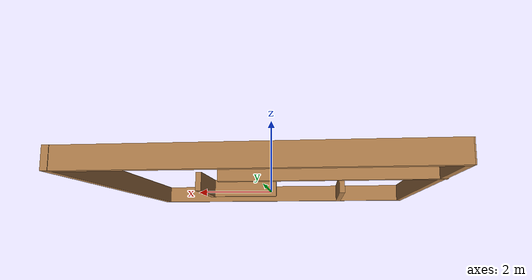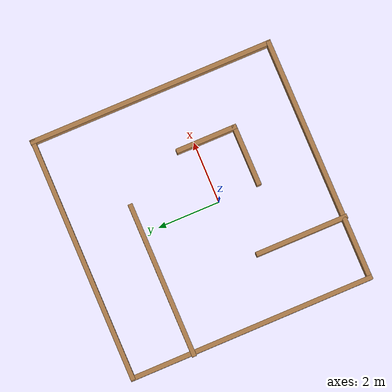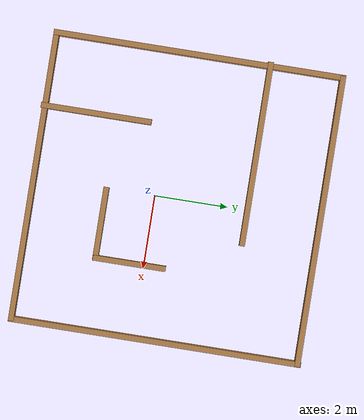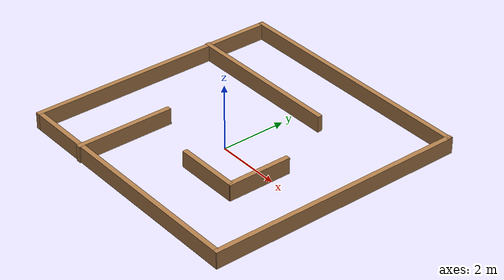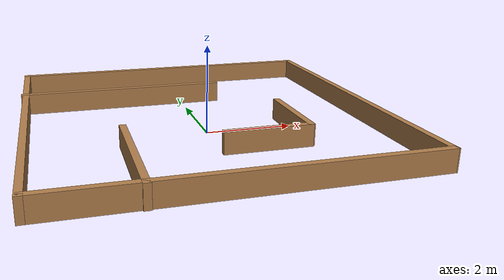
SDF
<?xml version='1.0'?>
<sdf version='1.6'>
  <model name='project_large'>
    <link name='Wall_0'>
      <pose frame=''>-0.019445 4.53087 0 0 -0 0</pose>
      <self_collide>0</self_collide>
      <enable_wind>0</enable_wind>
      <kinematic>0</kinematic>
      <inertial>
        <inertia>
          <ixx>0</ixx>
          <ixy>0</ixy>
          <ixz>0</ixz>
          <iyy>0</iyy>
          <iyz>0</iyz>
          <izz>0</izz>
        </inertia>
        <mass>0</mass>
        <pose frame=''>0 0 0 0 -0 0</pose>
      </inertial>
      <visual name='Wall_0_Visual'>
        <pose frame=''>0 0 0.25 0 -0 0</pose>
        <geometry>
          <box>
            <size>7.95463 0.15 0.5</size>
          </box>
        </geometry>
        <material>
          <script>
            <uri>file://media/materials/scripts/gazebo.material</uri>
            <name>Gazebo/Wood</name>
          </script>
          <ambient>1 1 1 1</ambient>
        </material>
        <transparency>0</transparency>
        <cast_shadows>1</cast_shadows>
      </visual>
      <collision name='Wall_0_Collision'>
        <laser_retro>0</laser_retro>
        <max_contacts>10</max_contacts>
        <pose frame=''>0 0 0.25 0 -0 0</pose>
        <geometry>
          <box>
            <size>7.95463 0.15 0.5</size>
          </box>
        </geometry>
        <surface>
          <friction>
            <ode>
              <mu>1</mu>
              <mu2>1</mu2>
              <fdir1>0 0 0</fdir1>
              <slip1>0</slip1>
              <slip2>0</slip2>
            </ode>
            <torsional>
              <coefficient>1</coefficient>
              <patch_radius>0</patch_radius>
              <surface_radius>0</surface_radius>
              <use_patch_radius>1</use_patch_radius>
              <ode>
                <slip>0</slip>
              </ode>
            </torsional>
          </friction>
          <bounce>
            <restitution_coefficient>0</restitution_coefficient>
            <threshold>1e+06</threshold>
          </bounce>
          <contact>
            <collide_without_contact>0</collide_without_contact>
            <collide_without_contact_bitmask>1</collide_without_contact_bitmask>
            <collide_bitmask>1</collide_bitmask>
            <ode>
              <soft_cfm>0</soft_cfm>
              <soft_erp>0.2</soft_erp>
              <kp>1e+13</kp>
              <kd>1</kd>
              <max_vel>0.01</max_vel>
              <min_depth>0</min_depth>
            </ode>
            <bullet>
              <split_impulse>1</split_impulse>
              <split_impulse_penetration_threshold>-0.01</split_impulse_penetration_threshold>
              <soft_cfm>0</soft_cfm>
              <soft_erp>0.2</soft_erp>
              <kp>1e+13</kp>
              <kd>1</kd>
            </bullet>
          </contact>
        </surface>
      </collision>
    </link>
    <link name='Wall_0_clone'>
      <pose frame=''>-1.54338 2.54434 0 0 -0 0</pose>
      <self_collide>0</self_collide>
      <enable_wind>0</enable_wind>
      <kinematic>0</kinematic>
      <inertial>
        <inertia>
          <ixx>0</ixx>
          <ixy>0</ixy>
          <ixz>0</ixz>
          <iyy>0</iyy>
          <iyz>0</iyz>
          <izz>0</izz>
        </inertia>
        <mass>0</mass>
        <pose frame=''>0 0 0 0 -0 0</pose>
      </inertial>
      <visual name='Wall_0_Visual'>
        <pose frame=''>0 0 0.25 0 -0 0</pose>
        <geometry>
          <box>
            <size>5.03427 0.15 0.5</size>
          </box>
        </geometry>
        <material>
          <script>
            <uri>file://media/materials/scripts/gazebo.material</uri>
            <name>Gazebo/Wood</name>
          </script>
          <ambient>1 1 1 1</ambient>
          <shader type='pixel'/>
        </material>
        <transparency>0</transparency>
        <cast_shadows>1</cast_shadows>
      </visual>
      <collision name='Wall_0_Collision'>
        <laser_retro>0</laser_retro>
        <max_contacts>10</max_contacts>
        <pose frame=''>0 0 0.25 0 -0 0</pose>
        <geometry>
          <box>
            <size>5.03427 0.15 0.5</size>
          </box>
        </geometry>
        <surface>
          <friction>
            <ode>
              <mu>1</mu>
              <mu2>1</mu2>
              <fdir1>0 0 0</fdir1>
              <slip1>0</slip1>
              <slip2>0</slip2>
            </ode>
            <torsional>
              <coefficient>1</coefficient>
              <patch_radius>0</patch_radius>
              <surface_radius>0</surface_radius>
              <use_patch_radius>1</use_patch_radius>
              <ode>
                <slip>0</slip>
              </ode>
            </torsional>
          </friction>
          <bounce>
            <restitution_coefficient>0</restitution_coefficient>
            <threshold>1e+06</threshold>
          </bounce>
          <contact>
            <collide_without_contact>0</collide_without_contact>
            <collide_without_contact_bitmask>1</collide_without_contact_bitmask>
            <collide_bitmask>1</collide_bitmask>
            <ode>
              <soft_cfm>0</soft_cfm>
              <soft_erp>0.2</soft_erp>
              <kp>1e+13</kp>
              <kd>1</kd>
              <max_vel>0.01</max_vel>
              <min_depth>0</min_depth>
            </ode>
            <bullet>
              <split_impulse>1</split_impulse>
              <split_impulse_penetration_threshold>-0.01</split_impulse_penetration_threshold>
              <soft_cfm>0</soft_cfm>
              <soft_erp>0.2</soft_erp>
              <kp>1e+13</kp>
              <kd>1</kd>
            </bullet>
          </contact>
        </surface>
      </collision>
    </link>
    <link name='Wall_2'>
      <pose frame=''>-3.94692 0.610965 0 0 0 -1.5708</pose>
      <self_collide>0</self_collide>
      <enable_wind>0</enable_wind>
      <kinematic>0</kinematic>
      <inertial>
        <inertia>
          <ixx>0</ixx>
          <ixy>0</ixy>
          <ixz>0</ixz>
          <iyy>0</iyy>
          <iyz>0</iyz>
          <izz>0</izz>
        </inertia>
        <mass>0</mass>
        <pose frame=''>0 0 0 0 -0 0</pose>
      </inertial>
      <visual name='Wall_2_Visual'>
        <pose frame=''>0 0 0.25 0 -0 0</pose>
        <geometry>
          <box>
            <size>7.98826 0.15 0.5</size>
          </box>
        </geometry>
        <material>
          <script>
            <uri>file://media/materials/scripts/gazebo.material</uri>
            <name>Gazebo/Wood</name>
          </script>
          <ambient>1 1 1 1</ambient>
        </material>
        <transparency>0</transparency>
        <cast_shadows>1</cast_shadows>
      </visual>
      <collision name='Wall_2_Collision'>
        <laser_retro>0</laser_retro>
        <max_contacts>10</max_contacts>
        <pose frame=''>0 0 0.25 0 -0 0</pose>
        <geometry>
          <box>
            <size>7.98826 0.15 0.5</size>
          </box>
        </geometry>
        <surface>
          <friction>
            <ode>
              <mu>1</mu>
              <mu2>1</mu2>
              <fdir1>0 0 0</fdir1>
              <slip1>0</slip1>
              <slip2>0</slip2>
            </ode>
            <torsional>
              <coefficient>1</coefficient>
              <patch_radius>0</patch_radius>
              <surface_radius>0</surface_radius>
              <use_patch_radius>1</use_patch_radius>
              <ode>
                <slip>0</slip>
              </ode>
            </torsional>
          </friction>
          <bounce>
            <restitution_coefficient>0</restitution_coefficient>
            <threshold>1e+06</threshold>
          </bounce>
          <contact>
            <collide_without_contact>0</collide_without_contact>
            <collide_without_contact_bitmask>1</collide_without_contact_bitmask>
            <collide_bitmask>1</collide_bitmask>
            <ode>
              <soft_cfm>0</soft_cfm>
              <soft_erp>0.2</soft_erp>
              <kp>1e+13</kp>
              <kd>1</kd>
              <max_vel>0.01</max_vel>
              <min_depth>0</min_depth>
            </ode>
            <bullet>
              <split_impulse>1</split_impulse>
              <split_impulse_penetration_threshold>-0.01</split_impulse_penetration_threshold>
              <soft_cfm>0</soft_cfm>
              <soft_erp>0.2</soft_erp>
              <kp>1e+13</kp>
              <kd>1</kd>
            </bullet>
          </contact>
        </surface>
      </collision>
    </link>
    <link name='Wall_2_clone'>
      <pose frame=''>-1.94739 -1.9052 0 0 0 -1.5708</pose>
      <self_collide>0</self_collide>
      <enable_wind>0</enable_wind>
      <kinematic>0</kinematic>
      <inertial>
        <inertia>
          <ixx>0</ixx>
          <ixy>0</ixy>
          <ixz>0</ixz>
          <iyy>0</iyy>
          <iyz>0</iyz>
          <izz>0</izz>
        </inertia>
        <mass>0</mass>
        <pose frame=''>0 0 0 0 -0 0</pose>
      </inertial>
      <visual name='Wall_2_Visual'>
        <pose frame=''>0 0 0.25 0 -0 0</pose>
        <geometry>
          <box>
            <size>3.01787 0.15 0.5</size>
          </box>
        </geometry>
        <material>
          <script>
            <uri>file://media/materials/scripts/gazebo.material</uri>
            <name>Gazebo/Wood</name>
          </script>
          <ambient>1 1 1 1</ambient>
          <shader type='pixel'/>
        </material>
        <transparency>0</transparency>
        <cast_shadows>1</cast_shadows>
      </visual>
      <collision name='Wall_2_Collision'>
        <laser_retro>0</laser_retro>
        <max_contacts>10</max_contacts>
        <pose frame=''>0 0 0.25 0 -0 0</pose>
        <geometry>
          <box>
            <size>3.01787 0.15 0.5</size>
          </box>
        </geometry>
        <surface>
          <friction>
            <ode>
              <mu>1</mu>
              <mu2>1</mu2>
              <fdir1>0 0 0</fdir1>
              <slip1>0</slip1>
              <slip2>0</slip2>
            </ode>
            <torsional>
              <coefficient>1</coefficient>
              <patch_radius>0</patch_radius>
              <surface_radius>0</surface_radius>
              <use_patch_radius>1</use_patch_radius>
              <ode>
                <slip>0</slip>
              </ode>
            </torsional>
          </friction>
          <bounce>
            <restitution_coefficient>0</restitution_coefficient>
            <threshold>1e+06</threshold>
          </bounce>
          <contact>
            <collide_without_contact>0</collide_without_contact>
            <collide_without_contact_bitmask>1</collide_without_contact_bitmask>
            <collide_bitmask>1</collide_bitmask>
            <ode>
              <soft_cfm>0</soft_cfm>
              <soft_erp>0.2</soft_erp>
              <kp>1e+13</kp>
              <kd>1</kd>
              <max_vel>0.01</max_vel>
              <min_depth>0</min_depth>
            </ode>
            <bullet>
              <split_impulse>1</split_impulse>
              <split_impulse_penetration_threshold>-0.01</split_impulse_penetration_threshold>
              <soft_cfm>0</soft_cfm>
              <soft_erp>0.2</soft_erp>
              <kp>1e+13</kp>
              <kd>1</kd>
            </bullet>
          </contact>
        </surface>
      </collision>
    </link>
    <link name='Wall_2_clone_0'>
      <pose frame=''>1.91102 -0.387064 0 0 0 -1.5708</pose>
      <self_collide>0</self_collide>
      <enable_wind>0</enable_wind>
      <kinematic>0</kinematic>
      <inertial>
        <inertia>
          <ixx>0</ixx>
          <ixy>0</ixy>
          <ixz>0</ixz>
          <iyy>0</iyy>
          <iyz>0</iyz>
          <izz>0</izz>
        </inertia>
        <mass>0</mass>
        <pose frame=''>0 0 0 0 -0 0</pose>
      </inertial>
      <visual name='Wall_2_Visual'>
        <pose frame=''>0 0 0.25 0 -0 0</pose>
        <geometry>
          <box>
            <size>1.99316 0.15 0.5</size>
          </box>
        </geometry>
        <material>
          <script>
            <uri>file://media/materials/scripts/gazebo.material</uri>
            <name>Gazebo/Wood</name>
          </script>
          <ambient>1 1 1 1</ambient>
          <shader type='pixel'/>
        </material>
        <transparency>0</transparency>
        <cast_shadows>1</cast_shadows>
      </visual>
      <collision name='Wall_2_Collision'>
        <laser_retro>0</laser_retro>
        <max_contacts>10</max_contacts>
        <pose frame=''>0 0 0.25 0 -0 0</pose>
        <geometry>
          <box>
            <size>1.99316 0.15 0.5</size>
          </box>
        </geometry>
        <surface>
          <friction>
            <ode>
              <mu>1</mu>
              <mu2>1</mu2>
              <fdir1>0 0 0</fdir1>
              <slip1>0</slip1>
              <slip2>0</slip2>
            </ode>
            <torsional>
              <coefficient>1</coefficient>
              <patch_radius>0</patch_radius>
              <surface_radius>0</surface_radius>
              <use_patch_radius>1</use_patch_radius>
              <ode>
                <slip>0</slip>
              </ode>
            </torsional>
          </friction>
          <bounce>
            <restitution_coefficient>0</restitution_coefficient>
            <threshold>1e+06</threshold>
          </bounce>
          <contact>
            <collide_without_contact>0</collide_without_contact>
            <collide_without_contact_bitmask>1</collide_without_contact_bitmask>
            <collide_bitmask>1</collide_bitmask>
            <ode>
              <soft_cfm>0</soft_cfm>
              <soft_erp>0.2</soft_erp>
              <kp>1e+13</kp>
              <kd>1</kd>
              <max_vel>0.01</max_vel>
              <min_depth>0</min_depth>
            </ode>
            <bullet>
              <split_impulse>1</split_impulse>
              <split_impulse_penetration_threshold>-0.01</split_impulse_penetration_threshold>
              <soft_cfm>0</soft_cfm>
              <soft_erp>0.2</soft_erp>
              <kp>1e+13</kp>
              <kd>1</kd>
            </bullet>
          </contact>
        </surface>
      </collision>
    </link>
    <link name='Wall_3'>
      <pose frame=''>-0.026453 -3.3068 0 0 -0 0</pose>
      <self_collide>0</self_collide>
      <enable_wind>0</enable_wind>
      <kinematic>0</kinematic>
      <inertial>
        <inertia>
          <ixx>0</ixx>
          <ixy>0</ixy>
          <ixz>0</ixz>
          <iyy>0</iyy>
          <iyz>0</iyz>
          <izz>0</izz>
        </inertia>
        <mass>0</mass>
        <pose frame=''>0 0 0 0 -0 0</pose>
      </inertial>
      <visual name='Wall_3_Visual'>
        <pose frame=''>0 0 0.25 0 -0 0</pose>
        <geometry>
          <box>
            <size>7.94315 0.15 0.5</size>
          </box>
        </geometry>
        <material>
          <script>
            <uri>file://media/materials/scripts/gazebo.material</uri>
            <name>Gazebo/Wood</name>
          </script>
          <ambient>1 1 1 1</ambient>
        </material>
        <transparency>0</transparency>
        <cast_shadows>1</cast_shadows>
      </visual>
      <collision name='Wall_3_Collision'>
        <laser_retro>0</laser_retro>
        <max_contacts>10</max_contacts>
        <pose frame=''>0 0 0.25 0 -0 0</pose>
        <geometry>
          <box>
            <size>7.94315 0.15 0.5</size>
          </box>
        </geometry>
        <surface>
          <friction>
            <ode>
              <mu>1</mu>
              <mu2>1</mu2>
              <fdir1>0 0 0</fdir1>
              <slip1>0</slip1>
              <slip2>0</slip2>
            </ode>
            <torsional>
              <coefficient>1</coefficient>
              <patch_radius>0</patch_radius>
              <surface_radius>0</surface_radius>
              <use_patch_radius>1</use_patch_radius>
              <ode>
                <slip>0</slip>
              </ode>
            </torsional>
          </friction>
          <bounce>
            <restitution_coefficient>0</restitution_coefficient>
            <threshold>1e+06</threshold>
          </bounce>
          <contact>
            <collide_without_contact>0</collide_without_contact>
            <collide_without_contact_bitmask>1</collide_without_contact_bitmask>
            <collide_bitmask>1</collide_bitmask>
            <ode>
              <soft_cfm>0</soft_cfm>
              <soft_erp>0.2</soft_erp>
              <kp>1e+13</kp>
              <kd>1</kd>
              <max_vel>0.01</max_vel>
              <min_depth>0</min_depth>
            </ode>
            <bullet>
              <split_impulse>1</split_impulse>
              <split_impulse_penetration_threshold>-0.01</split_impulse_penetration_threshold>
              <soft_cfm>0</soft_cfm>
              <soft_erp>0.2</soft_erp>
              <kp>1e+13</kp>
              <kd>1</kd>
            </bullet>
          </contact>
        </surface>
      </collision>
    </link>
    <link name='Wall_3_clone'>
      <pose frame=''>0.9667 -1.31826 0 0 -0 0</pose>
      <self_collide>0</self_collide>
      <enable_wind>0</enable_wind>
      <kinematic>0</kinematic>
      <inertial>
        <inertia>
          <ixx>0</ixx>
          <ixy>0</ixy>
          <ixz>0</ixz>
          <iyy>0</iyy>
          <iyz>0</iyz>
          <izz>0</izz>
        </inertia>
        <mass>0</mass>
        <pose frame=''>0 0 0 0 -0 0</pose>
      </inertial>
      <visual name='Wall_3_Visual'>
        <pose frame=''>0 0 0.25 0 -0 0</pose>
        <geometry>
          <box>
            <size>1.98351 0.15 0.5</size>
          </box>
        </geometry>
        <material>
          <script>
            <uri>file://media/materials/scripts/gazebo.material</uri>
            <name>Gazebo/Wood</name>
          </script>
          <ambient>1 1 1 1</ambient>
          <shader type='pixel'/>
        </material>
        <transparency>0</transparency>
        <cast_shadows>1</cast_shadows>
      </visual>
      <collision name='Wall_3_Collision'>
        <laser_retro>0</laser_retro>
        <max_contacts>10</max_contacts>
        <pose frame=''>0 0 0.25 0 -0 0</pose>
        <geometry>
          <box>
            <size>1.98351 0.15 0.5</size>
          </box>
        </geometry>
        <surface>
          <friction>
            <ode>
              <mu>1</mu>
              <mu2>1</mu2>
              <fdir1>0 0 0</fdir1>
              <slip1>0</slip1>
              <slip2>0</slip2>
            </ode>
            <torsional>
              <coefficient>1</coefficient>
              <patch_radius>0</patch_radius>
              <surface_radius>0</surface_radius>
              <use_patch_radius>1</use_patch_radius>
              <ode>
                <slip>0</slip>
              </ode>
            </torsional>
          </friction>
          <bounce>
            <restitution_coefficient>0</restitution_coefficient>
            <threshold>1e+06</threshold>
          </bounce>
          <contact>
            <collide_without_contact>0</collide_without_contact>
            <collide_without_contact_bitmask>1</collide_without_contact_bitmask>
            <collide_bitmask>1</collide_bitmask>
            <ode>
              <soft_cfm>0</soft_cfm>
              <soft_erp>0.2</soft_erp>
              <kp>1e+13</kp>
              <kd>1</kd>
              <max_vel>0.01</max_vel>
              <min_depth>0</min_depth>
            </ode>
            <bullet>
              <split_impulse>1</split_impulse>
              <split_impulse_penetration_threshold>-0.01</split_impulse_penetration_threshold>
              <soft_cfm>0</soft_cfm>
              <soft_erp>0.2</soft_erp>
              <kp>1e+13</kp>
              <kd>1</kd>
            </bullet>
          </contact>
        </surface>
      </collision>
    </link>
    <link name='Wall_4'>
      <pose frame=''>3.89657 0.619626 0 0 -0 1.5708</pose>
      <self_collide>0</self_collide>
      <enable_wind>0</enable_wind>
      <kinematic>0</kinematic>
      <inertial>
        <inertia>
          <ixx>0</ixx>
          <ixy>0</ixy>
          <ixz>0</ixz>
          <iyy>0</iyy>
          <iyz>0</iyz>
          <izz>0</izz>
        </inertia>
        <mass>0</mass>
        <pose frame=''>0 0 0 0 -0 0</pose>
      </inertial>
      <visual name='Wall_4_Visual'>
        <pose frame=''>0 0 0.25 0 -0 0</pose>
        <geometry>
          <box>
            <size>8.00243 0.15 0.5</size>
          </box>
        </geometry>
        <material>
          <script>
            <uri>file://media/materials/scripts/gazebo.material</uri>
            <name>Gazebo/Wood</name>
          </script>
          <ambient>1 1 1 1</ambient>
        </material>
        <transparency>0</transparency>
        <cast_shadows>1</cast_shadows>
      </visual>
      <collision name='Wall_4_Collision'>
        <laser_retro>0</laser_retro>
        <max_contacts>10</max_contacts>
        <pose frame=''>0 0 0.25 0 -0 0</pose>
        <geometry>
          <box>
            <size>8.00243 0.15 0.5</size>
          </box>
        </geometry>
        <surface>
          <friction>
            <ode>
              <mu>1</mu>
              <mu2>1</mu2>
              <fdir1>0 0 0</fdir1>
              <slip1>0</slip1>
              <slip2>0</slip2>
            </ode>
            <torsional>
              <coefficient>1</coefficient>
              <patch_radius>0</patch_radius>
              <surface_radius>0</surface_radius>
              <use_patch_radius>1</use_patch_radius>
              <ode>
                <slip>0</slip>
              </ode>
            </torsional>
          </friction>
          <bounce>
            <restitution_coefficient>0</restitution_coefficient>
            <threshold>1e+06</threshold>
          </bounce>
          <contact>
            <collide_without_contact>0</collide_without_contact>
            <collide_without_contact_bitmask>1</collide_without_contact_bitmask>
            <collide_bitmask>1</collide_bitmask>
            <ode>
              <soft_cfm>0</soft_cfm>
              <soft_erp>0.2</soft_erp>
              <kp>1e+13</kp>
              <kd>1</kd>
              <max_vel>0.01</max_vel>
              <min_depth>0</min_depth>
            </ode>
            <bullet>
              <split_impulse>1</split_impulse>
              <split_impulse_penetration_threshold>-0.01</split_impulse_penetration_threshold>
              <soft_cfm>0</soft_cfm>
              <soft_erp>0.2</soft_erp>
              <kp>1e+13</kp>
              <kd>1</kd>
            </bullet>
          </contact>
        </surface>
      </collision>
    </link>
    <static>1</static>
    <allow_auto_disable>1</allow_auto_disable>
  </model>
</sdf>
